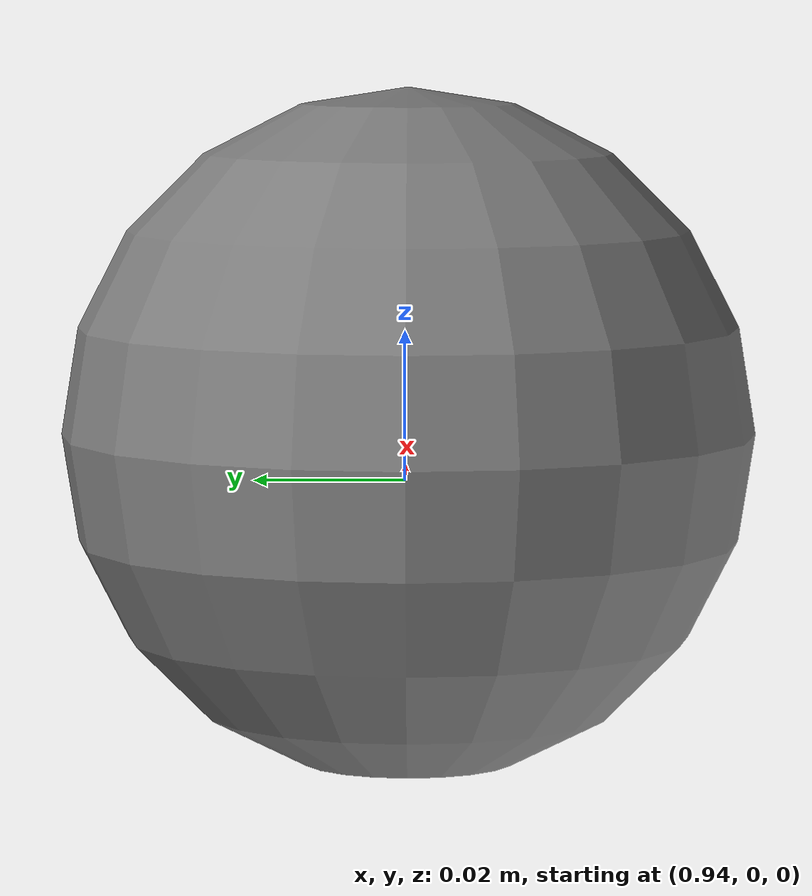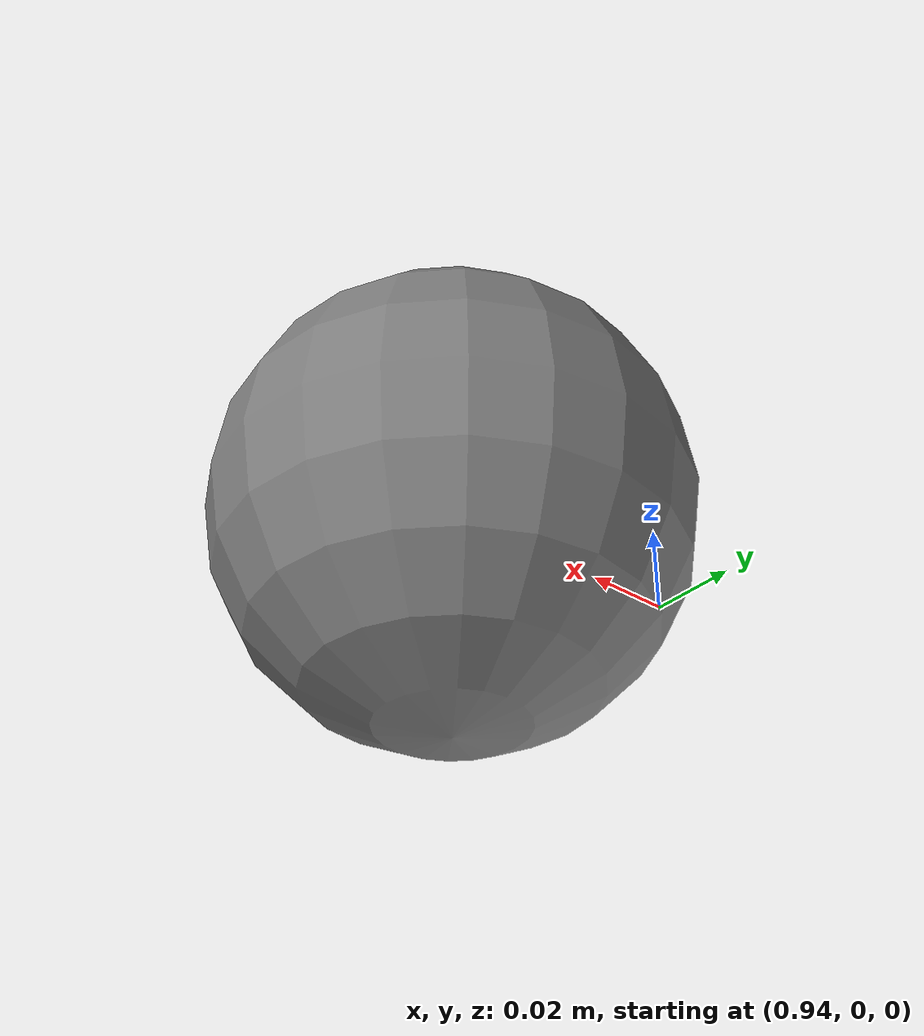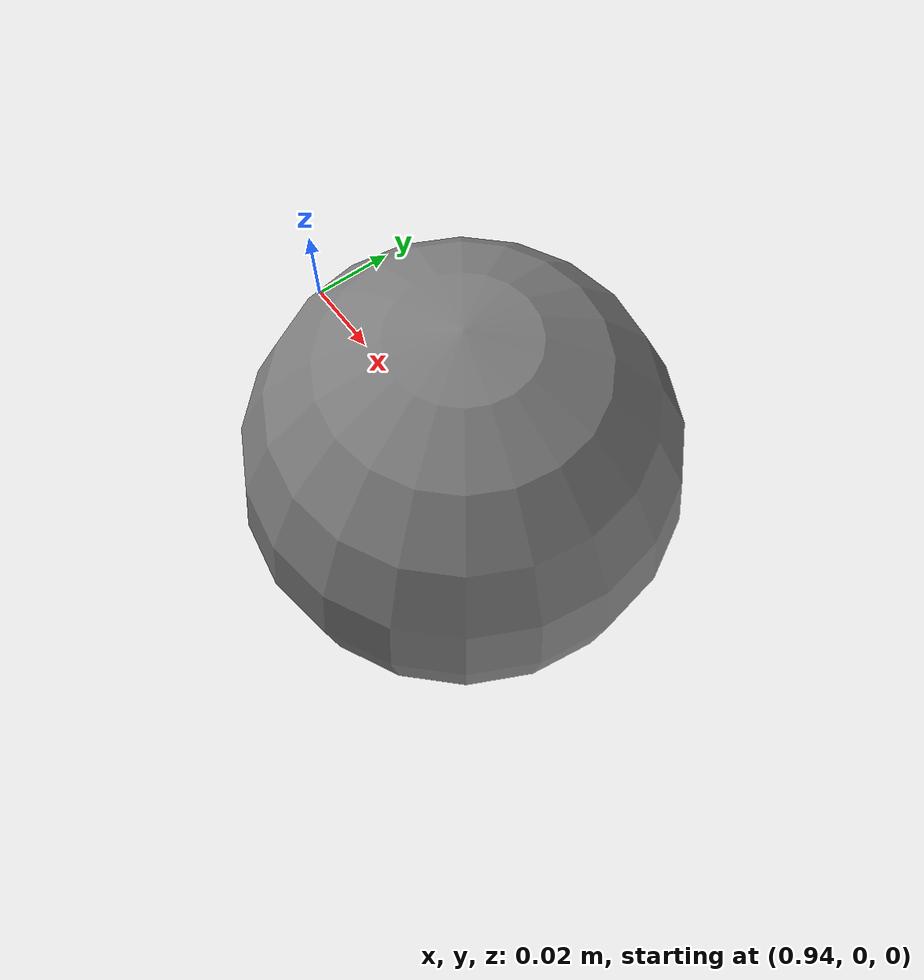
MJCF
<mujoco model="m">
                <worldbody>
                    <body name="ba" pos="1 0 0">
                        <geom name="g1" type="sphere" size="0.05" mass="1.0"/>
                    </body>
                </worldbody>
                <equality>
                    <distance geom1="g1" distance="-3.0"/>
                </equality>
            </mujoco>
